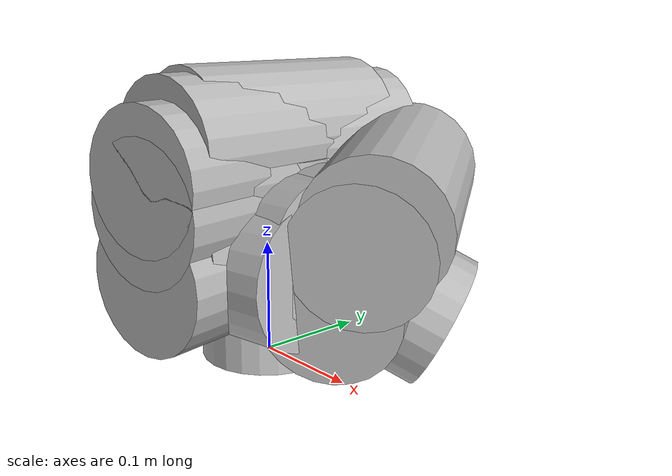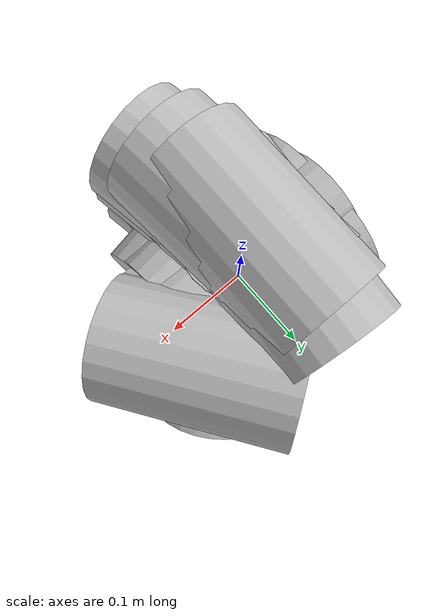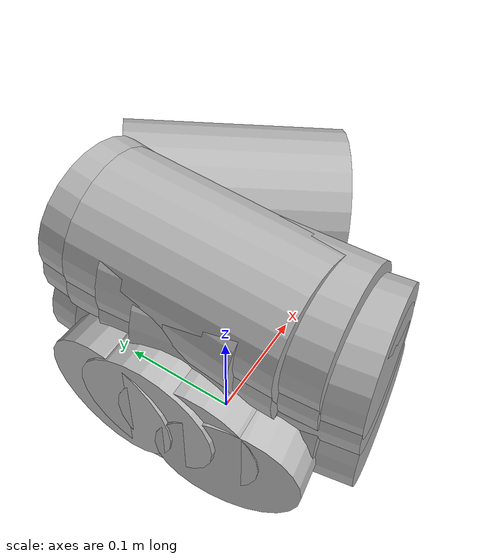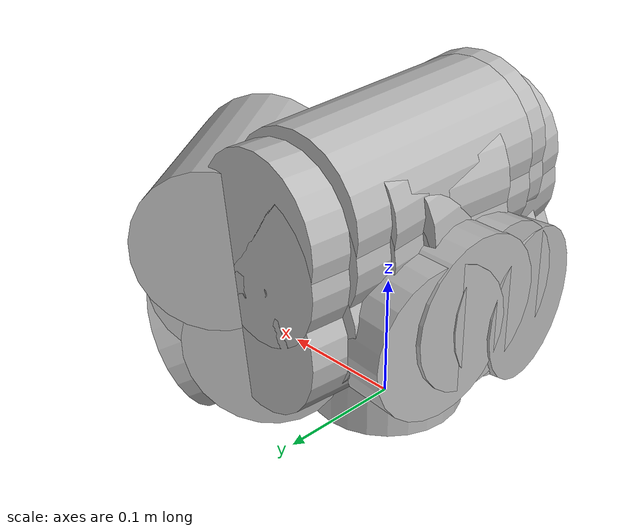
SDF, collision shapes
<sdf version='1.6'>
  <model name='hithand'>
    <link name='base_link'>
      <pose frame=''>0 0 0 0 -0 0</pose>
      <inertial>
        <pose frame=''>0 0 0 0 -0 0</pose>
        <mass>1</mass>
        <inertia>
          <ixx>1</ixx>
          <ixy>0</ixy>
          <ixz>0</ixz>
          <iyy>1</iyy>
          <iyz>0</iyz>
          <izz>1</izz>
        </inertia>
      </inertial>
      <collision name='base_link_collision'>
        <pose frame=''>0 0 0.09 0 -0 0</pose>
        <geometry>
          <cylinder>
            <length>0.18</length>
            <radius>0.06</radius>
          </cylinder>
        </geometry>
      </collision>
      <visual name='base_link_visual'>
        <pose frame=''>0 0 0 0 -0 0</pose>
        <geometry>
          <mesh>
            <scale>1 1 1</scale>
            <uri>model://hithand/meshes/visual/hit-hand-2-palm-right.dae</uri>
          </mesh>
        </geometry>
      </visual>
    </link>
    <joint name='fixed' type='fixed'>
      <child>base_link</child>
      <parent>world</parent>
    </joint>
    <link name='Right_Index_Basecover'>
      <pose frame=''>-0.00253 0.0368 0.107784 -0.087263 -1.57079 3.14159</pose>
      <inertial>
        <pose frame=''>0 0 0 0 -0 0</pose>
        <mass>1</mass>
        <inertia>
          <ixx>1</ixx>
          <ixy>0</ixy>
          <ixz>0</ixz>
          <iyy>1</iyy>
          <iyz>0</iyz>
          <izz>1</izz>
        </inertia>
      </inertial>
      <collision name='Right_Index_Basecover_collision'>
        <pose frame=''>0 0 0 0 -0 0</pose>
        <geometry>
          <cylinder>
            <length>0.18</length>
            <radius>0.06</radius>
          </cylinder>
        </geometry>
      </collision>
      <visual name='Right_Index_Basecover_visual'>
        <pose frame=''>0 0 0 0 -0 0</pose>
        <geometry>
          <mesh>
            <scale>1 1 1</scale>
            <uri>model://hithand/meshes/visual/hit-hand-2-finger-basecover.dae</uri>
          </mesh>
        </geometry>
      </visual>
    </link>
    <joint name='Right_Index_1' type='revolute'>
      <child>Right_Index_Basecover</child>
      <parent>base_link</parent>
      <axis>
        <xyz>0.996195 -0.087156 -0</xyz>
        <limit>
          <lower>-0.5</lower>
          <upper>1.4</upper>
          <effort>30</effort>
          <velocity>3.14</velocity>
        </limit>
        <dynamics>
          <spring_reference>0</spring_reference>
          <spring_stiffness>0</spring_stiffness>
        </dynamics>
        <use_parent_model_frame>1</use_parent_model_frame>
      </axis>
    </joint>
    <link name='Right_Index_Phoaprox'>
      <pose frame=''>-0.00253 0.0368 0.107784 1.48353 -1.57079 3.14159</pose>
      <inertial>
        <pose frame=''>0.062176 0.044373 0.078735 0.22581 -1.08366 0.411355</pose>
        <mass>1</mass>
        <inertia>
          <ixx>1</ixx>
          <ixy>0</ixy>
          <ixz>0</ixz>
          <iyy>1</iyy>
          <iyz>0</iyz>
          <izz>1</izz>
        </inertia>
      </inertial>
      <collision name='Right_Index_Phoaprox_collision'>
        <pose frame=''>0 0 0 0 -0 0</pose>
        <geometry>
          <cylinder>
            <length>0.18</length>
            <radius>0.06</radius>
          </cylinder>
        </geometry>
      </collision>
      <visual name='Right_Index_Phoaprox_visual'>
        <pose frame=''>0 0 0 0 -0 0</pose>
        <geometry>
          <mesh>
            <scale>1 1 1</scale>
            <uri>model://hithand/meshes/visual/hit-hand-2-finger-phaprox.dae</uri>
          </mesh>
        </geometry>
      </visual>
    </link>
    <joint name='Right_Index_2' type='revolute'>
      <child>Right_Index_Phoaprox</child>
      <parent>Right_Index_Basecover</parent>
      <axis>
        <xyz>0.087152 0.996195 -0</xyz>
        <limit>
          <lower>-0.5</lower>
          <upper>1.4</upper>
          <effort>30</effort>
          <velocity>3.14</velocity>
        </limit>
        <dynamics>
          <spring_reference>0</spring_reference>
          <spring_stiffness>0</spring_stiffness>
        </dynamics>
        <use_parent_model_frame>1</use_parent_model_frame>
      </axis>
    </joint>
    <link name='Right_Index_Phamed'>
      <pose frame=''>-0.00253 0.0368 0.162784 1.48353 -1.57079 3.14159</pose>
      <inertial>
        <pose frame=''>0 0 0 0 -0 0</pose>
        <mass>1</mass>
        <inertia>
          <ixx>1</ixx>
          <ixy>0</ixy>
          <ixz>0</ixz>
          <iyy>1</iyy>
          <iyz>0</iyz>
          <izz>1</izz>
        </inertia>
      </inertial>
      <collision name='Right_Index_Phamed_collision'>
        <pose frame=''>0 0 0 0 -0 0</pose>
        <geometry>
          <cylinder>
            <length>0.18</length>
            <radius>0.06</radius>
          </cylinder>
        </geometry>
      </collision>
      <visual name='Right_Index_Phamed_visual'>
        <pose frame=''>0 0 0 0 -0 0</pose>
        <geometry>
          <mesh>
            <scale>1 1 1</scale>
            <uri>model://hithand/meshes/visual/hit-hand-2-finger-phamed.dae</uri>
          </mesh>
        </geometry>
      </visual>
    </link>
    <joint name='Right_Index_3' type='revolute'>
      <child>Right_Index_Phamed</child>
      <parent>Right_Index_Phoaprox</parent>
      <axis>
        <xyz>0.087152 0.996195 -0</xyz>
        <limit>
          <lower>-0.5</lower>
          <upper>1.4</upper>
          <effort>30</effort>
          <velocity>3.14</velocity>
        </limit>
        <dynamics>
          <spring_reference>0</spring_reference>
          <spring_stiffness>0</spring_stiffness>
        </dynamics>
        <use_parent_model_frame>1</use_parent_model_frame>
      </axis>
    </joint>
    <link name='Right_Index_Phadist'>
      <pose frame=''>-0.00253 0.0368 0.187784 1.5708 -0.000797 3.05433</pose>
      <inertial>
        <pose frame=''>0 0 0 0 -0 0</pose>
        <mass>1</mass>
        <inertia>
          <ixx>1</ixx>
          <ixy>0</ixy>
          <ixz>0</ixz>
          <iyy>1</iyy>
          <iyz>0</iyz>
          <izz>1</izz>
        </inertia>
      </inertial>
      <collision name='Right_Index_Phadist_collision'>
        <pose frame=''>0 0 0 0 -0 0</pose>
        <geometry>
          <cylinder>
            <length>0.18</length>
            <radius>0.06</radius>
          </cylinder>
        </geometry>
      </collision>
      <visual name='Right_Index_Phadist_visual'>
        <pose frame=''>0 0 0 0 -0 0</pose>
        <geometry>
          <mesh>
            <scale>1 1 1</scale>
            <uri>model://hithand/meshes/visual/hit-hand-2-finger-phadist.dae</uri>
          </mesh>
        </geometry>
      </visual>
    </link>
    <joint name='Right_Index_4' type='revolute'>
      <child>Right_Index_Phadist</child>
      <parent>Right_Index_Phamed</parent>
      <axis>
        <xyz>0.087152 0.996195 -0</xyz>
        <limit>
          <lower>-0.5</lower>
          <upper>1.4</upper>
          <effort>30</effort>
          <velocity>3.14</velocity>
        </limit>
        <dynamics>
          <spring_reference>0</spring_reference>
          <spring_stiffness>0</spring_stiffness>
        </dynamics>
        <use_parent_model_frame>1</use_parent_model_frame>
      </axis>
    </joint>
    <link name='Right_Little_Basecover'>
      <pose frame=''>0.000972 -0.043396 0.093584 0.174533 -1.57079 3.14159</pose>
      <inertial>
        <pose frame=''>0 0 0 0 -0 0</pose>
        <mass>1</mass>
        <inertia>
          <ixx>1</ixx>
          <ixy>0</ixy>
          <ixz>0</ixz>
          <iyy>1</iyy>
          <iyz>0</iyz>
          <izz>1</izz>
        </inertia>
      </inertial>
      <collision name='Right_Little_Basecover_collision'>
        <pose frame=''>0 0 0 0 -0 0</pose>
        <geometry>
          <cylinder>
            <length>0.18</length>
            <radius>0.06</radius>
          </cylinder>
        </geometry>
      </collision>
      <visual name='Right_Little_Basecover_visual'>
        <pose frame=''>0 0 0 0 -0 0</pose>
        <geometry>
          <mesh>
            <scale>1 1 1</scale>
            <uri>model://hithand/meshes/visual/hit-hand-2-finger-basecover.dae</uri>
          </mesh>
        </geometry>
      </visual>
    </link>
    <joint name='Right_Little_1' type='revolute'>
      <child>Right_Little_Basecover</child>
      <parent>base_link</parent>
      <axis>
        <xyz>0.984808 0.173648 -0</xyz>
        <limit>
          <lower>-0.5</lower>
          <upper>1.4</upper>
          <effort>30</effort>
          <velocity>3.14</velocity>
        </limit>
        <dynamics>
          <spring_reference>0</spring_reference>
          <spring_stiffness>0</spring_stiffness>
        </dynamics>
        <use_parent_model_frame>1</use_parent_model_frame>
      </axis>
    </joint>
    <link name='Right_Little_Phoaprox'>
      <pose frame=''>0.000972 -0.043396 0.093584 1.74533 -1.57079 3.14159</pose>
      <inertial>
        <pose frame=''>0.062176 0.044373 0.078735 0.22581 -1.08366 0.411355</pose>
        <mass>1</mass>
        <inertia>
          <ixx>1</ixx>
          <ixy>0</ixy>
          <ixz>0</ixz>
          <iyy>1</iyy>
          <iyz>0</iyz>
          <izz>1</izz>
        </inertia>
      </inertial>
      <collision name='Right_Little_Phoaprox_collision'>
        <pose frame=''>0 0 0 0 -0 0</pose>
        <geometry>
          <cylinder>
            <length>0.18</length>
            <radius>0.06</radius>
          </cylinder>
        </geometry>
      </collision>
      <visual name='Right_Little_Phoaprox_visual'>
        <pose frame=''>0 0 0 0 -0 0</pose>
        <geometry>
          <mesh>
            <scale>1 1 1</scale>
            <uri>model://hithand/meshes/visual/hit-hand-2-finger-phaprox.dae</uri>
          </mesh>
        </geometry>
      </visual>
    </link>
    <joint name='Right_Little_2' type='revolute'>
      <child>Right_Little_Phoaprox</child>
      <parent>Right_Little_Basecover</parent>
      <axis>
        <xyz>-0.173652 0.984807 0</xyz>
        <limit>
          <lower>-0.5</lower>
          <upper>1.4</upper>
          <effort>30</effort>
          <velocity>3.14</velocity>
        </limit>
        <dynamics>
          <spring_reference>0</spring_reference>
          <spring_stiffness>0</spring_stiffness>
        </dynamics>
        <use_parent_model_frame>1</use_parent_model_frame>
      </axis>
    </joint>
    <link name='Right_Little_Phamed'>
      <pose frame=''>0.000972 -0.043396 0.148584 1.74533 -1.57079 3.14159</pose>
      <inertial>
        <pose frame=''>0 0 0 0 -0 0</pose>
        <mass>1</mass>
        <inertia>
          <ixx>1</ixx>
          <ixy>0</ixy>
          <ixz>0</ixz>
          <iyy>1</iyy>
          <iyz>0</iyz>
          <izz>1</izz>
        </inertia>
      </inertial>
      <collision name='Right_Little_Phamed_collision'>
        <pose frame=''>0 0 0 0 -0 0</pose>
        <geometry>
          <cylinder>
            <length>0.18</length>
            <radius>0.06</radius>
          </cylinder>
        </geometry>
      </collision>
      <visual name='Right_Little_Phamed_visual'>
        <pose frame=''>0 0 0 0 -0 0</pose>
        <geometry>
          <mesh>
            <scale>1 1 1</scale>
            <uri>model://hithand/meshes/visual/hit-hand-2-finger-phamed.dae</uri>
          </mesh>
        </geometry>
      </visual>
    </link>
    <joint name='Right_Little_3' type='revolute'>
      <child>Right_Little_Phamed</child>
      <parent>Right_Little_Phoaprox</parent>
      <axis>
        <xyz>-0.173652 0.984807 0</xyz>
        <limit>
          <lower>-0.5</lower>
          <upper>1.4</upper>
          <effort>30</effort>
          <velocity>3.14</velocity>
        </limit>
        <dynamics>
          <spring_reference>0</spring_reference>
          <spring_stiffness>0</spring_stiffness>
        </dynamics>
        <use_parent_model_frame>1</use_parent_model_frame>
      </axis>
    </joint>
    <link name='Right_Little_Phadist'>
      <pose frame=''>0.000972 -0.043396 0.173584 1.5708 -0.000797 -2.96706</pose>
      <inertial>
        <pose frame=''>0 0 0 0 -0 0</pose>
        <mass>1</mass>
        <inertia>
          <ixx>1</ixx>
          <ixy>0</ixy>
          <ixz>0</ixz>
          <iyy>1</iyy>
          <iyz>0</iyz>
          <izz>1</izz>
        </inertia>
      </inertial>
      <collision name='Right_Little_Phadist_collision'>
        <pose frame=''>0 0 0 0 -0 0</pose>
        <geometry>
          <cylinder>
            <length>0.18</length>
            <radius>0.06</radius>
          </cylinder>
        </geometry>
      </collision>
      <visual name='Right_Little_Phadist_visual'>
        <pose frame=''>0 0 0 0 -0 0</pose>
        <geometry>
          <mesh>
            <scale>1 1 1</scale>
            <uri>model://hithand/meshes/visual/hit-hand-2-finger-phadist.dae</uri>
          </mesh>
        </geometry>
      </visual>
    </link>
    <joint name='Right_Little_4' type='revolute'>
      <child>Right_Little_Phadist</child>
      <parent>Right_Little_Phamed</parent>
      <axis>
        <xyz>-0.173652 0.984807 0</xyz>
        <limit>
          <lower>-0.5</lower>
          <upper>1.4</upper>
          <effort>30</effort>
          <velocity>3.14</velocity>
        </limit>
        <dynamics>
          <spring_reference>0</spring_reference>
          <spring_stiffness>0</spring_stiffness>
        </dynamics>
        <use_parent_model_frame>1</use_parent_model_frame>
      </axis>
    </joint>
    <link name='Right_Middle_Basecover'>
      <pose frame=''>-0.0037 0.01 0.117784 -3e-06 -1.57079 3.14159</pose>
      <inertial>
        <pose frame=''>0 0 0 0 -0 0</pose>
        <mass>1</mass>
        <inertia>
          <ixx>1</ixx>
          <ixy>0</ixy>
          <ixz>0</ixz>
          <iyy>1</iyy>
          <iyz>0</iyz>
          <izz>1</izz>
        </inertia>
      </inertial>
      <collision name='Right_Middle_Basecover_collision'>
        <pose frame=''>0 0 0 0 -0 0</pose>
        <geometry>
          <cylinder>
            <length>0.18</length>
            <radius>0.06</radius>
          </cylinder>
        </geometry>
      </collision>
      <visual name='Right_Middle_Basecover_visual'>
        <pose frame=''>0 0 0 0 -0 0</pose>
        <geometry>
          <mesh>
            <scale>1 1 1</scale>
            <uri>model://hithand/meshes/visual/hit-hand-2-finger-basecover.dae</uri>
          </mesh>
        </geometry>
      </visual>
    </link>
    <joint name='Right_Middle_1' type='revolute'>
      <child>Right_Middle_Basecover</child>
      <parent>base_link</parent>
      <axis>
        <xyz>1 -0 -0</xyz>
        <limit>
          <lower>-0.5</lower>
          <upper>1.4</upper>
          <effort>30</effort>
          <velocity>3.14</velocity>
        </limit>
        <dynamics>
          <spring_reference>0</spring_reference>
          <spring_stiffness>0</spring_stiffness>
        </dynamics>
        <use_parent_model_frame>1</use_parent_model_frame>
      </axis>
    </joint>
    <link name='Right_Middle_Phoaprox'>
      <pose frame=''>-0.0037 0.01 0.117784 1.5708 -1.57079 3.14159</pose>
      <inertial>
        <pose frame=''>0.062176 0.044373 0.078735 0.22581 -1.08366 0.411355</pose>
        <mass>1</mass>
        <inertia>
          <ixx>1</ixx>
          <ixy>0</ixy>
          <ixz>0</ixz>
          <iyy>1</iyy>
          <iyz>0</iyz>
          <izz>1</izz>
        </inertia>
      </inertial>
      <collision name='Right_Middle_Phoaprox_collision'>
        <pose frame=''>0 0 0 0 -0 0</pose>
        <geometry>
          <cylinder>
            <length>0.18</length>
            <radius>0.06</radius>
          </cylinder>
        </geometry>
      </collision>
      <visual name='Right_Middle_Phoaprox_visual'>
        <pose frame=''>0 0 0 0 -0 0</pose>
        <geometry>
          <mesh>
            <scale>1 1 1</scale>
            <uri>model://hithand/meshes/visual/hit-hand-2-finger-phaprox.dae</uri>
          </mesh>
        </geometry>
      </visual>
    </link>
    <joint name='Right_Middle_2' type='revolute'>
      <child>Right_Middle_Phoaprox</child>
      <parent>Right_Middle_Basecover</parent>
      <axis>
        <xyz>-3e-06 1 0</xyz>
        <limit>
          <lower>-0.5</lower>
          <upper>1.4</upper>
          <effort>30</effort>
          <velocity>3.14</velocity>
        </limit>
        <dynamics>
          <spring_reference>0</spring_reference>
          <spring_stiffness>0</spring_stiffness>
        </dynamics>
        <use_parent_model_frame>1</use_parent_model_frame>
      </axis>
    </joint>
    <link name='Right_Middle_Phamed'>
      <pose frame=''>-0.0037 0.01 0.172784 1.5708 -1.57079 3.14159</pose>
      <inertial>
        <pose frame=''>0 0 0 0 -0 0</pose>
        <mass>1</mass>
        <inertia>
          <ixx>1</ixx>
          <ixy>0</ixy>
          <ixz>0</ixz>
          <iyy>1</iyy>
          <iyz>0</iyz>
          <izz>1</izz>
        </inertia>
      </inertial>
      <collision name='Right_Middle_Phamed_collision'>
        <pose frame=''>0 0 0 0 -0 0</pose>
        <geometry>
          <cylinder>
            <length>0.18</length>
            <radius>0.06</radius>
          </cylinder>
        </geometry>
      </collision>
      <visual name='Right_Middle_Phamed_visual'>
        <pose frame=''>0 0 0 0 -0 0</pose>
        <geometry>
          <mesh>
            <scale>1 1 1</scale>
            <uri>model://hithand/meshes/visual/hit-hand-2-finger-phamed.dae</uri>
          </mesh>
        </geometry>
      </visual>
    </link>
    <joint name='Right_Middle_3' type='revolute'>
      <child>Right_Middle_Phamed</child>
      <parent>Right_Middle_Phoaprox</parent>
      <axis>
        <xyz>-3e-06 1 0</xyz>
        <limit>
          <lower>-0.5</lower>
          <upper>1.4</upper>
          <effort>30</effort>
          <velocity>3.14</velocity>
        </limit>
        <dynamics>
          <spring_reference>0</spring_reference>
          <spring_stiffness>0</spring_stiffness>
        </dynamics>
        <use_parent_model_frame>1</use_parent_model_frame>
      </axis>
    </joint>
    <link name='Right_Middle_Phadist'>
      <pose frame=''>-0.0037 0.01 0.197784 1.5708 -0.000797 -3.14159</pose>
      <inertial>
        <pose frame=''>0 0 0 0 -0 0</pose>
        <mass>1</mass>
        <inertia>
          <ixx>1</ixx>
          <ixy>0</ixy>
          <ixz>0</ixz>
          <iyy>1</iyy>
          <iyz>0</iyz>
          <izz>1</izz>
        </inertia>
      </inertial>
      <collision name='Right_Middle_Phadist_collision'>
        <pose frame=''>0 0 0 0 -0 0</pose>
        <geometry>
          <cylinder>
            <length>0.18</length>
            <radius>0.06</radius>
          </cylinder>
        </geometry>
      </collision>
      <visual name='Right_Middle_Phadist_visual'>
        <pose frame=''>0 0 0 0 -0 0</pose>
        <geometry>
          <mesh>
            <scale>1 1 1</scale>
            <uri>model://hithand/meshes/visual/hit-hand-2-finger-phadist.dae</uri>
          </mesh>
        </geometry>
      </visual>
    </link>
    <joint name='Right_Middle_4' type='revolute'>
      <child>Right_Middle_Phadist</child>
      <parent>Right_Middle_Phamed</parent>
      <axis>
        <xyz>-3e-06 1 0</xyz>
        <limit>
          <lower>-0.5</lower>
          <upper>1.4</upper>
          <effort>30</effort>
          <velocity>3.14</velocity>
        </limit>
        <dynamics>
          <spring_reference>0</spring_reference>
          <spring_stiffness>0</spring_stiffness>
        </dynamics>
        <use_parent_model_frame>1</use_parent_model_frame>
      </axis>
    </joint>
    <link name='Right_Ring_Basecover'>
      <pose frame=''>0 -0.0168 0.112584 0.087263 -1.57079 -3.14159</pose>
      <inertial>
        <pose frame=''>0 0 0 0 -0 0</pose>
        <mass>1</mass>
        <inertia>
          <ixx>1</ixx>
          <ixy>0</ixy>
          <ixz>0</ixz>
          <iyy>1</iyy>
          <iyz>0</iyz>
          <izz>1</izz>
        </inertia>
      </inertial>
      <collision name='Right_Ring_Basecover_collision'>
        <pose frame=''>0 0 0 0 -0 0</pose>
        <geometry>
          <cylinder>
            <length>0.18</length>
            <radius>0.06</radius>
          </cylinder>
        </geometry>
      </collision>
      <visual name='Right_Ring_Basecover_visual'>
        <pose frame=''>0 0 0 0 -0 0</pose>
        <geometry>
          <mesh>
            <scale>1 1 1</scale>
            <uri>model://hithand/meshes/visual/hit-hand-2-finger-basecover.dae</uri>
          </mesh>
        </geometry>
      </visual>
    </link>
    <joint name='Right_Ring_1' type='revolute'>
      <child>Right_Ring_Basecover</child>
      <parent>base_link</parent>
      <axis>
        <xyz>0.996195 0.087156 -0</xyz>
        <limit>
          <lower>-0.5</lower>
          <upper>1.4</upper>
          <effort>30</effort>
          <velocity>3.14</velocity>
        </limit>
        <dynamics>
          <spring_reference>0</spring_reference>
          <spring_stiffness>0</spring_stiffness>
        </dynamics>
        <use_parent_model_frame>1</use_parent_model_frame>
      </axis>
    </joint>
    <link name='Right_Ring_Phoaprox'>
      <pose frame=''>0 -0.0168 0.112584 1.65806 -1.57079 -3.14159</pose>
      <inertial>
        <pose frame=''>0.062176 0.044373 0.078735 0.22581 -1.08366 0.411355</pose>
        <mass>1</mass>
        <inertia>
          <ixx>1</ixx>
          <ixy>0</ixy>
          <ixz>0</ixz>
          <iyy>1</iyy>
          <iyz>0</iyz>
          <izz>1</izz>
        </inertia>
      </inertial>
      <collision name='Right_Ring_Phoaprox_collision'>
        <pose frame=''>0 0 0 0 -0 0</pose>
        <geometry>
          <cylinder>
            <length>0.18</length>
            <radius>0.06</radius>
          </cylinder>
        </geometry>
      </collision>
      <visual name='Right_Ring_Phoaprox_visual'>
        <pose frame=''>0 0 0 0 -0 0</pose>
        <geometry>
          <mesh>
            <scale>1 1 1</scale>
            <uri>model://hithand/meshes/visual/hit-hand-2-finger-phaprox.dae</uri>
          </mesh>
        </geometry>
      </visual>
    </link>
    <joint name='Right_Ring_2' type='revolute'>
      <child>Right_Ring_Phoaprox</child>
      <parent>Right_Ring_Basecover</parent>
      <axis>
        <xyz>-0.08716 0.996194 0</xyz>
        <limit>
          <lower>-0.5</lower>
          <upper>1.4</upper>
          <effort>30</effort>
          <velocity>3.14</velocity>
        </limit>
        <dynamics>
          <spring_reference>0</spring_reference>
          <spring_stiffness>0</spring_stiffness>
        </dynamics>
        <use_parent_model_frame>1</use_parent_model_frame>
      </axis>
    </joint>
    <link name='Right_Ring_Phamed'>
      <pose frame=''>0 -0.0168 0.167584 1.65806 -1.57079 -3.14159</pose>
      <inertial>
        <pose frame=''>0 0 0 0 -0 0</pose>
        <mass>1</mass>
        <inertia>
          <ixx>1</ixx>
          <ixy>0</ixy>
          <ixz>0</ixz>
          <iyy>1</iyy>
          <iyz>0</iyz>
          <izz>1</izz>
        </inertia>
      </inertial>
      <collision name='Right_Ring_Phamed_collision'>
        <pose frame=''>0 0 0 0 -0 0</pose>
        <geometry>
          <cylinder>
            <length>0.18</length>
            <radius>0.06</radius>
          </cylinder>
        </geometry>
      </collision>
      <visual name='Right_Ring_Phamed_visual'>
        <pose frame=''>0 0 0 0 -0 0</pose>
        <geometry>
          <mesh>
            <scale>1 1 1</scale>
            <uri>model://hithand/meshes/visual/hit-hand-2-finger-phamed.dae</uri>
          </mesh>
        </geometry>
      </visual>
    </link>
    <joint name='Right_Ring_3' type='revolute'>
      <child>Right_Ring_Phamed</child>
      <parent>Right_Ring_Phoaprox</parent>
      <axis>
        <xyz>-0.08716 0.996194 0</xyz>
        <limit>
          <lower>-0.5</lower>
          <upper>1.4</upper>
          <effort>30</effort>
          <velocity>3.14</velocity>
        </limit>
        <dynamics>
          <spring_reference>0</spring_reference>
          <spring_stiffness>0</spring_stiffness>
        </dynamics>
        <use_parent_model_frame>1</use_parent_model_frame>
      </axis>
    </joint>
    <link name='Right_Ring_Phadist'>
      <pose frame=''>0 -0.0168 0.192584 1.5708 -0.000797 -3.05432</pose>
      <inertial>
        <pose frame=''>0 0 0 0 -0 0</pose>
        <mass>1</mass>
        <inertia>
          <ixx>1</ixx>
          <ixy>0</ixy>
          <ixz>0</ixz>
          <iyy>1</iyy>
          <iyz>0</iyz>
          <izz>1</izz>
        </inertia>
      </inertial>
      <collision name='Right_Ring_Phadist_collision'>
        <pose frame=''>0 0 0 0 -0 0</pose>
        <geometry>
          <cylinder>
            <length>0.18</length>
            <radius>0.06</radius>
          </cylinder>
        </geometry>
      </collision>
      <visual name='Right_Ring_Phadist_visual'>
        <pose frame=''>0 0 0 0 -0 0</pose>
        <geometry>
          <mesh>
            <scale>1 1 1</scale>
            <uri>model://hithand/meshes/visual/hit-hand-2-finger-phadist.dae</uri>
          </mesh>
        </geometry>
      </visual>
    </link>
    <joint name='Right_Ring_4' type='revolute'>
      <child>Right_Ring_Phadist</child>
      <parent>Right_Ring_Phamed</parent>
      <axis>
        <xyz>-0.08716 0.996194 0</xyz>
        <limit>
          <lower>-0.5</lower>
          <upper>1.4</upper>
          <effort>30</effort>
          <velocity>3.14</velocity>
        </limit>
        <dynamics>
          <spring_reference>0</spring_reference>
          <spring_stiffness>0</spring_stiffness>
        </dynamics>
        <use_parent_model_frame>1</use_parent_model_frame>
      </axis>
    </joint>
    <link name='Right_Thumb_Basecover'>
      <pose frame=''>0.062176 0.044373 0.078735 0.22581 -1.08366 0.411355</pose>
      <inertial>
        <pose frame=''>0 0 0 0 -0 0</pose>
        <mass>1</mass>
        <inertia>
          <ixx>1</ixx>
          <ixy>0</ixy>
          <ixz>0</ixz>
          <iyy>1</iyy>
          <iyz>0</iyz>
          <izz>1</izz>
        </inertia>
      </inertial>
      <collision name='Right_Thumb_Basecover_collision'>
        <pose frame=''>0 0 0 0 -0 0</pose>
        <geometry>
          <cylinder>
            <length>0.18</length>
            <radius>0.06</radius>
          </cylinder>
        </geometry>
      </collision>
      <visual name='Right_Thumb_Basecover_visual'>
        <pose frame=''>0 0 0 0 -0 0</pose>
        <geometry>
          <mesh>
            <scale>1 1 1</scale>
            <uri>model://hithand/meshes/visual/hit-hand-2-finger-basecover.dae</uri>
          </mesh>
        </geometry>
      </visual>
    </link>
    <joint name='Right_Thumb_1' type='revolute'>
      <child>Right_Thumb_Basecover</child>
      <parent>base_link</parent>
      <axis>
        <xyz>-0.699871 -0.549587 0.456217</xyz>
        <limit>
          <lower>-0.5</lower>
          <upper>1.4</upper>
          <effort>30</effort>
          <velocity>3.14</velocity>
        </limit>
        <dynamics>
          <spring_reference>0</spring_reference>
          <spring_stiffness>0</spring_stiffness>
        </dynamics>
        <use_parent_model_frame>1</use_parent_model_frame>
      </axis>
    </joint>
    <link name='Right_Thumb_Phoaprox'>
      <pose frame=''>0.062176 0.044373 0.078735 1.79661 -1.08366 0.411355</pose>
      <inertial>
        <pose frame=''>0.062176 0.044373 0.078735 0.22581 -1.08366 0.411355</pose>
        <mass>1</mass>
        <inertia>
          <ixx>1</ixx>
          <ixy>0</ixy>
          <ixz>0</ixz>
          <iyy>1</iyy>
          <iyz>0</iyz>
          <izz>1</izz>
        </inertia>
      </inertial>
      <collision name='Right_Thumb_Phoaprox_collision'>
        <pose frame=''>0 0 0 0 -0 0</pose>
        <geometry>
          <cylinder>
            <length>0.18</length>
            <radius>0.06</radius>
          </cylinder>
        </geometry>
      </collision>
      <visual name='Right_Thumb_Phoaprox_visual'>
        <pose frame=''>0 0 0 0 -0 0</pose>
        <geometry>
          <mesh>
            <scale>1 1 1</scale>
            <uri>model://hithand/meshes/visual/hit-hand-2-finger-phaprox.dae</uri>
          </mesh>
        </geometry>
      </visual>
    </link>
    <joint name='Right_Thumb_2' type='revolute'>
      <child>Right_Thumb_Phoaprox</child>
      <parent>Right_Thumb_Basecover</parent>
      <axis>
        <xyz>0.57105 -0.814198 -0.104808</xyz>
        <limit>
          <lower>-0.5</lower>
          <upper>1.4</upper>
          <effort>30</effort>
          <velocity>3.14</velocity>
        </limit>
        <dynamics>
          <spring_reference>0</spring_reference>
          <spring_stiffness>0</spring_stiffness>
        </dynamics>
        <use_parent_model_frame>1</use_parent_model_frame>
      </axis>
    </joint>
    <link name='Right_Thumb_Phamed'>
      <pose frame=''>0.085774 0.054667 0.127337 1.79661 -1.08366 0.411355</pose>
      <inertial>
        <pose frame=''>0 0 0 0 -0 0</pose>
        <mass>1</mass>
        <inertia>
          <ixx>1</ixx>
          <ixy>0</ixy>
          <ixz>0</ixz>
          <iyy>1</iyy>
          <iyz>0</iyz>
          <izz>1</izz>
        </inertia>
      </inertial>
      <collision name='Right_Thumb_Phamed_collision'>
        <pose frame=''>0 0 0 0 -0 0</pose>
        <geometry>
          <cylinder>
            <length>0.18</length>
            <radius>0.06</radius>
          </cylinder>
        </geometry>
      </collision>
      <visual name='Right_Thumb_Phamed_visual'>
        <pose frame=''>0 0 0 0 -0 0</pose>
        <geometry>
          <mesh>
            <scale>1 1 1</scale>
            <uri>model://hithand/meshes/visual/hit-hand-2-finger-phamed.dae</uri>
          </mesh>
        </geometry>
      </visual>
    </link>
    <joint name='Right_Thumb_3' type='revolute'>
      <child>Right_Thumb_Phamed</child>
      <parent>Right_Thumb_Phoaprox</parent>
      <axis>
        <xyz>0.57105 -0.814198 -0.104808</xyz>
        <limit>
          <lower>-0.5</lower>
          <upper>1.4</upper>
          <effort>30</effort>
          <velocity>3.14</velocity>
        </limit>
        <dynamics>
          <spring_reference>0</spring_reference>
          <spring_stiffness>0</spring_stiffness>
        </dynamics>
        <use_parent_model_frame>1</use_parent_model_frame>
      </axis>
    </joint>
    <link name='Right_Thumb_Phadist'>
      <pose frame=''>0.0965 0.059347 0.149429 1.6888 0.472948 0.665593</pose>
      <inertial>
        <pose frame=''>0 0 0 0 -0 0</pose>
        <mass>1</mass>
        <inertia>
          <ixx>1</ixx>
          <ixy>0</ixy>
          <ixz>0</ixz>
          <iyy>1</iyy>
          <iyz>0</iyz>
          <izz>1</izz>
        </inertia>
      </inertial>
      <collision name='Right_Thumb_Phadist_collision'>
        <pose frame=''>0 0 0 0 -0 0</pose>
        <geometry>
          <cylinder>
            <length>0.18</length>
            <radius>0.06</radius>
          </cylinder>
        </geometry>
      </collision>
      <visual name='Right_Thumb_Phadist_visual'>
        <pose frame=''>0 0 0 0 -0 0</pose>
        <geometry>
          <mesh>
            <scale>1 1 1</scale>
            <uri>model://hithand/meshes/visual/hit-hand-2-finger-phadist.dae</uri>
          </mesh>
        </geometry>
      </visual>
    </link>
    <joint name='Right_Thumb_4' type='revolute'>
      <child>Right_Thumb_Phadist</child>
      <parent>Right_Thumb_Phamed</parent>
      <axis>
        <xyz>0.57105 -0.814198 -0.104808</xyz>
        <limit>
          <lower>-0.5</lower>
          <upper>1.4</upper>
          <effort>30</effort>
          <velocity>3.14</velocity>
        </limit>
        <dynamics>
          <spring_reference>0</spring_reference>
          <spring_stiffness>0</spring_stiffness>
        </dynamics>
        <use_parent_model_frame>1</use_parent_model_frame>
      </axis>
    </joint>
  </model>
</sdf>
